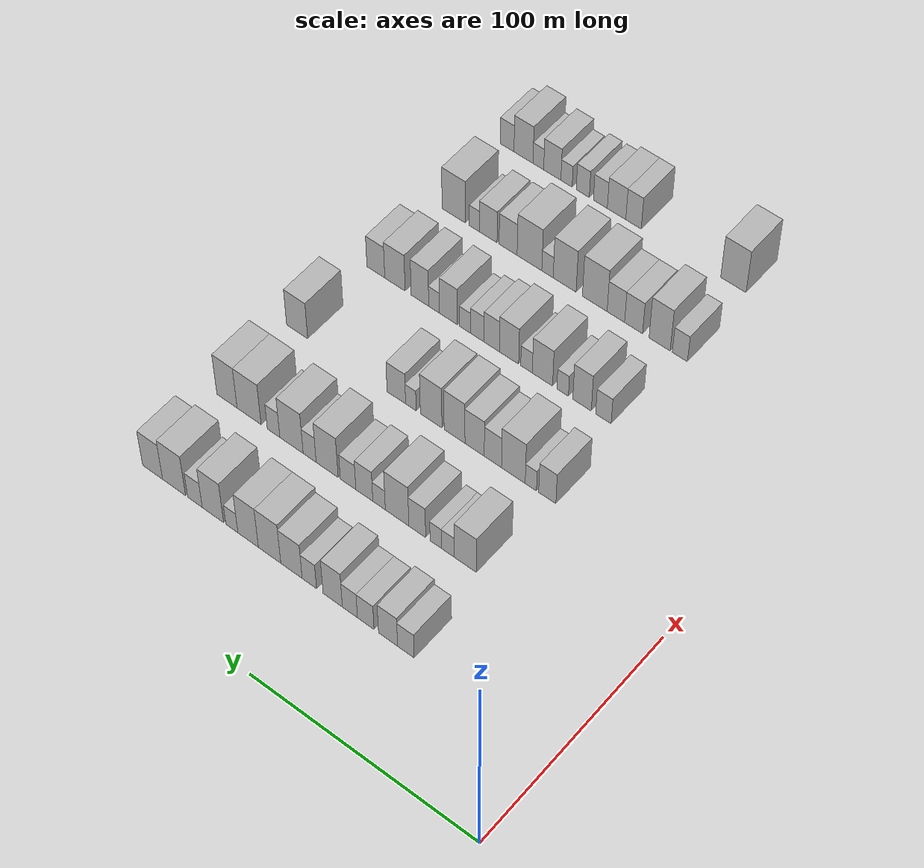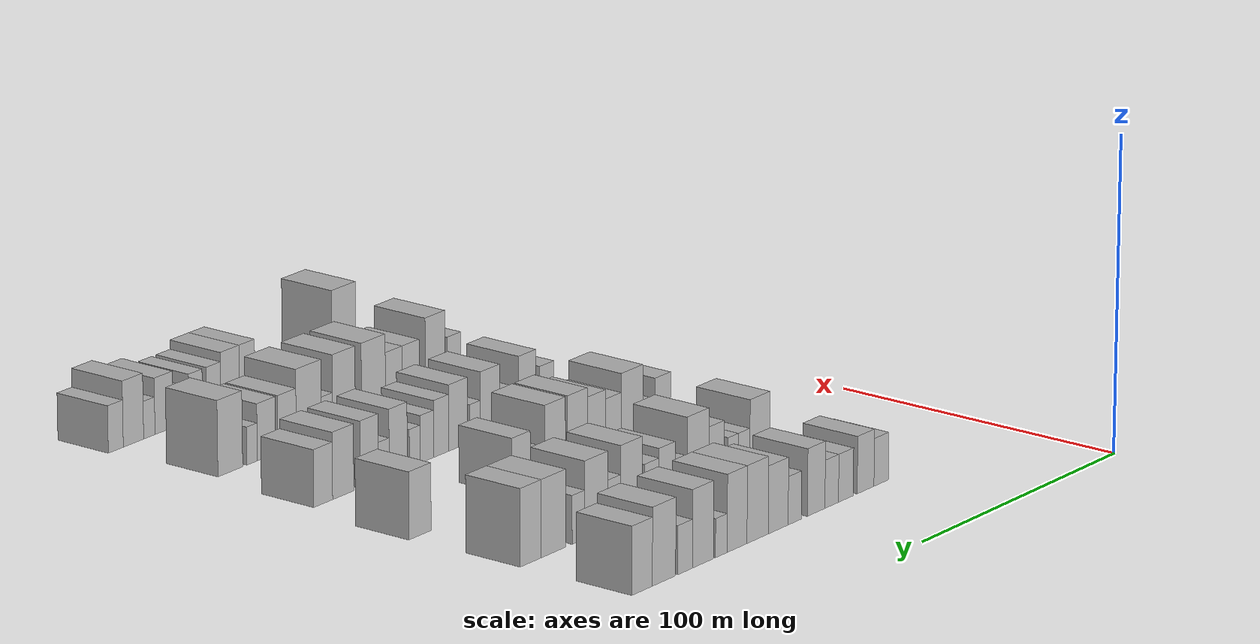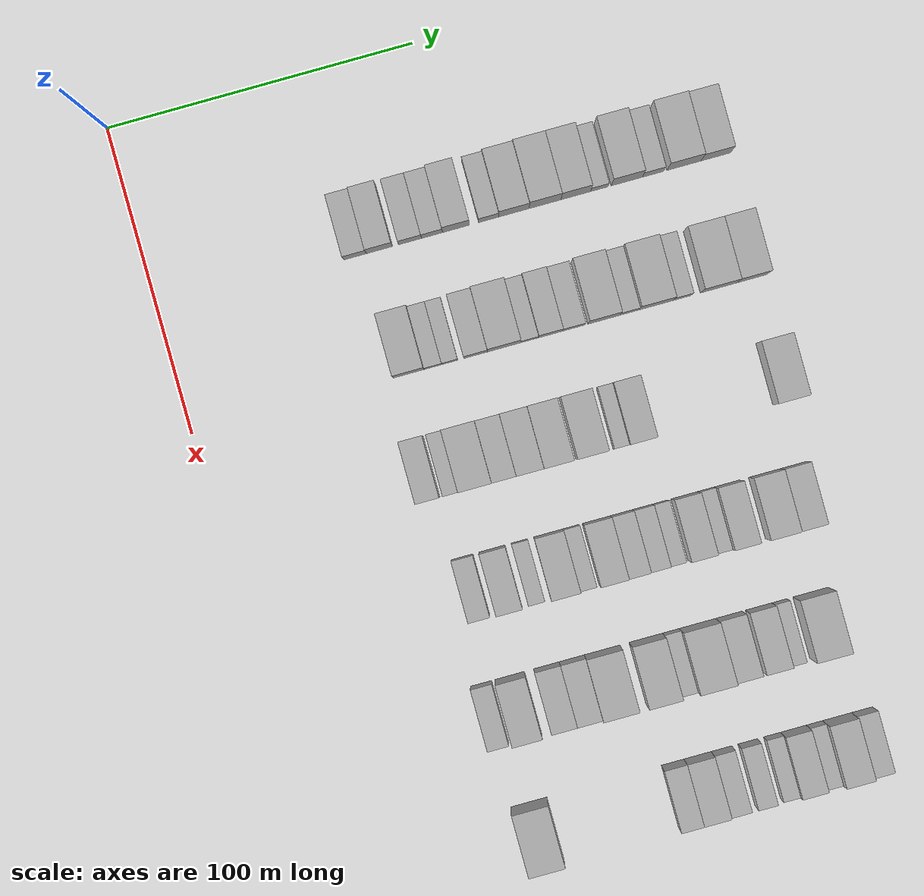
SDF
<sdf version="1.6">
 <world name="default">
  <model name="building_79">
   <static>1</static>
   <pose>50.0000 64.6062 0 0.000000 0.000000 0.000000</pose>
   <link name="link">
    <pose>0 0 7.50 0 0 0</pose>
    <collision name="collision"><geometry><box><size>20.0000 7.3665 15.0000</size></box></geometry></collision>
    <visual name="visual">
     <cast_shadows>0</cast_shadows>
     <geometry><box><size>20.0000 7.3665 15.0000</size></box></geometry>
     <material>
      <script>
       <uri>model://HANNAS_wall/materials/scripts</uri>
       <uri>model://HANNAS_wall/materials/textures</uri>
       <name>vrc/HANNAS_wall</name>
      </script>
     </material>
    </visual>
   </link>
  </model>
  <model name="building_80">
   <static>1</static>
   <pose>50.0000 72.5438 0 0.000000 0.000000 0.000000</pose>
   <link name="link">
    <pose>0 0 9.00 0 0 0</pose>
    <collision name="collision"><geometry><box><size>20.0000 8.5087 18.0000</size></box></geometry></collision>
    <visual name="visual">
     <cast_shadows>0</cast_shadows>
     <geometry><box><size>20.0000 8.5087 18.0000</size></box></geometry>
     <material>
      <script>
       <uri>model://HANNAS_wall/materials/scripts</uri>
       <uri>model://HANNAS_wall/materials/textures</uri>
       <name>vrc/HANNAS_wall</name>
      </script>
     </material>
    </visual>
   </link>
  </model>
  <model name="building_81">
   <static>1</static>
   <pose>50.0000 82.5302 0 0.000000 0.000000 0.000000</pose>
   <link name="link">
    <pose>0 0 7.50 0 0 0</pose>
    <collision name="collision"><geometry><box><size>20.0000 7.4639 15.0000</size></box></geometry></collision>
    <visual name="visual">
     <cast_shadows>0</cast_shadows>
     <geometry><box><size>20.0000 7.4639 15.0000</size></box></geometry>
     <material>
      <script>
       <uri>model://HANNAS_wall/materials/scripts</uri>
       <uri>model://HANNAS_wall/materials/textures</uri>
       <name>vrc/HANNAS_wall</name>
      </script>
     </material>
    </visual>
   </link>
  </model>
  <model name="building_82">
   <static>1</static>
   <pose>50.0000 89.6755 0 0.000000 0.000000 0.000000</pose>
   <link name="link">
    <pose>0 0 7.50 0 0 0</pose>
    <collision name="collision"><geometry><box><size>20.0000 6.8267 15.0000</size></box></geometry></collision>
    <visual name="visual">
     <cast_shadows>0</cast_shadows>
     <geometry><box><size>20.0000 6.8267 15.0000</size></box></geometry>
     <material>
      <script>
       <uri>model://HANNAS_wall/materials/scripts</uri>
       <uri>model://HANNAS_wall/materials/textures</uri>
       <name>vrc/HANNAS_wall</name>
      </script>
     </material>
    </visual>
   </link>
  </model>
  <model name="building_83">
   <static>1</static>
   <pose>50.0000 97.4816 0 0.000000 0.000000 0.000000</pose>
   <link name="link">
    <pose>0 0 10.50 0 0 0</pose>
    <collision name="collision"><geometry><box><size>20.0000 8.7856 21.0000</size></box></geometry></collision>
    <visual name="visual">
     <cast_shadows>0</cast_shadows>
     <geometry><box><size>20.0000 8.7856 21.0000</size></box></geometry>
     <material>
      <script>
       <uri>model://HANNAS_wall/materials/scripts</uri>
       <uri>model://HANNAS_wall/materials/textures</uri>
       <name>vrc/HANNAS_wall</name>
      </script>
     </material>
    </visual>
   </link>
  </model>
  <model name="building_84">
   <static>1</static>
   <pose>50.0000 108.1662 0 0.000000 0.000000 0.000000</pose>
   <link name="link">
    <pose>0 0 7.50 0 0 0</pose>
    <collision name="collision"><geometry><box><size>20.0000 6.5834 15.0000</size></box></geometry></collision>
    <visual name="visual">
     <cast_shadows>0</cast_shadows>
     <geometry><box><size>20.0000 6.5834 15.0000</size></box></geometry>
     <material>
      <script>
       <uri>model://HANNAS_wall/materials/scripts</uri>
       <uri>model://HANNAS_wall/materials/textures</uri>
       <name>vrc/HANNAS_wall</name>
      </script>
     </material>
    </visual>
   </link>
  </model>
  <model name="building_85">
   <static>1</static>
   <pose>50.0000 116.4012 0 0.000000 0.000000 0.000000</pose>
   <link name="link">
    <pose>0 0 10.50 0 0 0</pose>
    <collision name="collision"><geometry><box><size>20.0000 9.8866 21.0000</size></box></geometry></collision>
    <visual name="visual">
     <cast_shadows>0</cast_shadows>
     <geometry><box><size>20.0000 9.8866 21.0000</size></box></geometry>
     <material>
      <script>
       <uri>model://HANNAS_wall/materials/scripts</uri>
       <uri>model://HANNAS_wall/materials/textures</uri>
       <name>vrc/HANNAS_wall</name>
      </script>
     </material>
    </visual>
   </link>
  </model>
  <model name="building_86">
   <static>1</static>
   <pose>50.0000 126.5587 0 0.000000 0.000000 0.000000</pose>
   <link name="link">
    <pose>0 0 12.00 0 0 0</pose>
    <collision name="collision"><geometry><box><size>20.0000 10.4285 24.0000</size></box></geometry></collision>
    <visual name="visual">
     <cast_shadows>0</cast_shadows>
     <geometry><box><size>20.0000 10.4285 24.0000</size></box></geometry>
     <material>
      <script>
       <uri>model://HANNAS_wall/materials/scripts</uri>
       <uri>model://HANNAS_wall/materials/textures</uri>
       <name>vrc/HANNAS_wall</name>
      </script>
     </material>
    </visual>
   </link>
  </model>
  <model name="building_87">
   <static>1</static>
   <pose>50.0000 136.6007 0 0.000000 0.000000 0.000000</pose>
   <link name="link">
    <pose>0 0 12.00 0 0 0</pose>
    <collision name="collision"><geometry><box><size>20.0000 9.6554 24.0000</size></box></geometry></collision>
    <visual name="visual">
     <cast_shadows>0</cast_shadows>
     <geometry><box><size>20.0000 9.6554 24.0000</size></box></geometry>
     <material>
      <script>
       <uri>model://HANNAS_wall/materials/scripts</uri>
       <uri>model://HANNAS_wall/materials/textures</uri>
       <name>vrc/HANNAS_wall</name>
      </script>
     </material>
    </visual>
   </link>
  </model>
  <model name="building_88">
   <static>1</static>
   <pose>50.0000 144.2853 0 0.000000 0.000000 0.000000</pose>
   <link name="link">
    <pose>0 0 6.00 0 0 0</pose>
    <collision name="collision"><geometry><box><size>20.0000 5.7137 12.0000</size></box></geometry></collision>
    <visual name="visual">
     <cast_shadows>0</cast_shadows>
     <geometry><box><size>20.0000 5.7137 12.0000</size></box></geometry>
     <material>
      <script>
       <uri>model://HANNAS_wall/materials/scripts</uri>
       <uri>model://HANNAS_wall/materials/textures</uri>
       <name>vrc/HANNAS_wall</name>
      </script>
     </material>
    </visual>
   </link>
  </model>
  <model name="building_89">
   <static>1</static>
   <pose>50.0000 153.2380 0 0.000000 0.000000 0.000000</pose>
   <link name="link">
    <pose>0 0 12.00 0 0 0</pose>
    <collision name="collision"><geometry><box><size>20.0000 10.1916 24.0000</size></box></geometry></collision>
    <visual name="visual">
     <cast_shadows>0</cast_shadows>
     <geometry><box><size>20.0000 10.1916 24.0000</size></box></geometry>
     <material>
      <script>
       <uri>model://HANNAS_wall/materials/scripts</uri>
       <uri>model://HANNAS_wall/materials/textures</uri>
       <name>vrc/HANNAS_wall</name>
      </script>
     </material>
    </visual>
   </link>
  </model>
  <model name="building_90">
   <static>1</static>
   <pose>50.0000 161.8307 0 0.000000 0.000000 0.000000</pose>
   <link name="link">
    <pose>0 0 7.50 0 0 0</pose>
    <collision name="collision"><geometry><box><size>20.0000 6.9939 15.0000</size></box></geometry></collision>
    <visual name="visual">
     <cast_shadows>0</cast_shadows>
     <geometry><box><size>20.0000 6.9939 15.0000</size></box></geometry>
     <material>
      <script>
       <uri>model://HANNAS_wall/materials/scripts</uri>
       <uri>model://HANNAS_wall/materials/textures</uri>
       <name>vrc/HANNAS_wall</name>
      </script>
     </material>
    </visual>
   </link>
  </model>
  <model name="building_91">
   <static>1</static>
   <pose>50.0000 171.8938 0 0.000000 0.000000 0.000000</pose>
   <link name="link">
    <pose>0 0 12.00 0 0 0</pose>
    <collision name="collision"><geometry><box><size>20.0000 11.1322 24.0000</size></box></geometry></collision>
    <visual name="visual">
     <cast_shadows>0</cast_shadows>
     <geometry><box><size>20.0000 11.1322 24.0000</size></box></geometry>
     <material>
      <script>
       <uri>model://HANNAS_wall/materials/scripts</uri>
       <uri>model://HANNAS_wall/materials/textures</uri>
       <name>vrc/HANNAS_wall</name>
      </script>
     </material>
    </visual>
   </link>
  </model>
  <model name="building_92">
   <static>1</static>
   <pose>50.0000 182.3178 0 0.000000 0.000000 0.000000</pose>
   <link name="link">
    <pose>0 0 10.50 0 0 0</pose>
    <collision name="collision"><geometry><box><size>20.0000 9.7157 21.0000</size></box></geometry></collision>
    <visual name="visual">
     <cast_shadows>0</cast_shadows>
     <geometry><box><size>20.0000 9.7157 21.0000</size></box></geometry>
     <material>
      <script>
       <uri>model://HANNAS_wall/materials/scripts</uri>
       <uri>model://HANNAS_wall/materials/textures</uri>
       <name>vrc/HANNAS_wall</name>
      </script>
     </material>
    </visual>
   </link>
  </model>
  <model name="building_220">
   <static>1</static>
   <pose>90.0000 71.1115 0 0.000000 0.000000 0.000000</pose>
   <link name="link">
    <pose>0 0 10.50 0 0 0</pose>
    <collision name="collision"><geometry><box><size>20.0000 9.9995 21.0000</size></box></geometry></collision>
    <visual name="visual">
     <cast_shadows>0</cast_shadows>
     <geometry><box><size>20.0000 9.9995 21.0000</size></box></geometry>
     <material>
      <script>
       <uri>model://HANNAS_wall/materials/scripts</uri>
       <uri>model://HANNAS_wall/materials/textures</uri>
       <name>vrc/HANNAS_wall</name>
      </script>
     </material>
    </visual>
   </link>
  </model>
  <model name="building_221">
   <static>1</static>
   <pose>90.0000 78.9693 0 0.000000 0.000000 0.000000</pose>
   <link name="link">
    <pose>0 0 6.00 0 0 0</pose>
    <collision name="collision"><geometry><box><size>20.0000 5.7160 12.0000</size></box></geometry></collision>
    <visual name="visual">
     <cast_shadows>0</cast_shadows>
     <geometry><box><size>20.0000 5.7160 12.0000</size></box></geometry>
     <material>
      <script>
       <uri>model://HANNAS_wall/materials/scripts</uri>
       <uri>model://HANNAS_wall/materials/textures</uri>
       <name>vrc/HANNAS_wall</name>
      </script>
     </material>
    </visual>
   </link>
  </model>
  <model name="building_222">
   <static>1</static>
   <pose>90.0000 84.4139 0 0.000000 0.000000 0.000000</pose>
   <link name="link">
    <pose>0 0 6.00 0 0 0</pose>
    <collision name="collision"><geometry><box><size>20.0000 5.1732 12.0000</size></box></geometry></collision>
    <visual name="visual">
     <cast_shadows>0</cast_shadows>
     <geometry><box><size>20.0000 5.1732 12.0000</size></box></geometry>
     <material>
      <script>
       <uri>model://HANNAS_wall/materials/scripts</uri>
       <uri>model://HANNAS_wall/materials/textures</uri>
       <name>vrc/HANNAS_wall</name>
      </script>
     </material>
    </visual>
   </link>
  </model>
  <model name="building_223">
   <static>1</static>
   <pose>90.0000 92.8314 0 0.000000 0.000000 0.000000</pose>
   <link name="link">
    <pose>0 0 9.00 0 0 0</pose>
    <collision name="collision"><geometry><box><size>20.0000 7.6619 18.0000</size></box></geometry></collision>
    <visual name="visual">
     <cast_shadows>0</cast_shadows>
     <geometry><box><size>20.0000 7.6619 18.0000</size></box></geometry>
     <material>
      <script>
       <uri>model://HANNAS_wall/materials/scripts</uri>
       <uri>model://HANNAS_wall/materials/textures</uri>
       <name>vrc/HANNAS_wall</name>
      </script>
     </material>
    </visual>
   </link>
  </model>
  <model name="building_224">
   <static>1</static>
   <pose>90.0000 102.0780 0 0.000000 0.000000 0.000000</pose>
   <link name="link">
    <pose>0 0 12.00 0 0 0</pose>
    <collision name="collision"><geometry><box><size>20.0000 10.8312 24.0000</size></box></geometry></collision>
    <visual name="visual">
     <cast_shadows>0</cast_shadows>
     <geometry><box><size>20.0000 10.8312 24.0000</size></box></geometry>
     <material>
      <script>
       <uri>model://HANNAS_wall/materials/scripts</uri>
       <uri>model://HANNAS_wall/materials/textures</uri>
       <name>vrc/HANNAS_wall</name>
      </script>
     </material>
    </visual>
   </link>
  </model>
  <model name="building_225">
   <static>1</static>
   <pose>90.0000 110.3849 0 0.000000 0.000000 0.000000</pose>
   <link name="link">
    <pose>0 0 6.00 0 0 0</pose>
    <collision name="collision"><geometry><box><size>20.0000 5.7825 12.0000</size></box></geometry></collision>
    <visual name="visual">
     <cast_shadows>0</cast_shadows>
     <geometry><box><size>20.0000 5.7825 12.0000</size></box></geometry>
     <material>
      <script>
       <uri>model://HANNAS_wall/materials/scripts</uri>
       <uri>model://HANNAS_wall/materials/textures</uri>
       <name>vrc/HANNAS_wall</name>
      </script>
     </material>
    </visual>
   </link>
  </model>
  <model name="building_226">
   <static>1</static>
   <pose>90.0000 117.2213 0 0.000000 0.000000 0.000000</pose>
   <link name="link">
    <pose>0 0 9.00 0 0 0</pose>
    <collision name="collision"><geometry><box><size>20.0000 7.8904 18.0000</size></box></geometry></collision>
    <visual name="visual">
     <cast_shadows>0</cast_shadows>
     <geometry><box><size>20.0000 7.8904 18.0000</size></box></geometry>
     <material>
      <script>
       <uri>model://HANNAS_wall/materials/scripts</uri>
       <uri>model://HANNAS_wall/materials/textures</uri>
       <name>vrc/HANNAS_wall</name>
      </script>
     </material>
    </visual>
   </link>
  </model>
  <model name="building_227">
   <static>1</static>
   <pose>90.0000 124.8132 0 0.000000 0.000000 0.000000</pose>
   <link name="link">
    <pose>0 0 7.50 0 0 0</pose>
    <collision name="collision"><geometry><box><size>20.0000 7.2935 15.0000</size></box></geometry></collision>
    <visual name="visual">
     <cast_shadows>0</cast_shadows>
     <geometry><box><size>20.0000 7.2935 15.0000</size></box></geometry>
     <material>
      <script>
       <uri>model://HANNAS_wall/materials/scripts</uri>
       <uri>model://HANNAS_wall/materials/textures</uri>
       <name>vrc/HANNAS_wall</name>
      </script>
     </material>
    </visual>
   </link>
  </model>
  <model name="building_228">
   <static>1</static>
   <pose>90.0000 134.6575 0 0.000000 0.000000 0.000000</pose>
   <link name="link">
    <pose>0 0 12.00 0 0 0</pose>
    <collision name="collision"><geometry><box><size>20.0000 10.3951 24.0000</size></box></geometry></collision>
    <visual name="visual">
     <cast_shadows>0</cast_shadows>
     <geometry><box><size>20.0000 10.3951 24.0000</size></box></geometry>
     <material>
      <script>
       <uri>model://HANNAS_wall/materials/scripts</uri>
       <uri>model://HANNAS_wall/materials/textures</uri>
       <name>vrc/HANNAS_wall</name>
      </script>
     </material>
    </visual>
   </link>
  </model>
  <model name="building_229">
   <static>1</static>
   <pose>90.0000 142.9363 0 0.000000 0.000000 0.000000</pose>
   <link name="link">
    <pose>0 0 7.50 0 0 0</pose>
    <collision name="collision"><geometry><box><size>20.0000 6.1624 15.0000</size></box></geometry></collision>
    <visual name="visual">
     <cast_shadows>0</cast_shadows>
     <geometry><box><size>20.0000 6.1624 15.0000</size></box></geometry>
     <material>
      <script>
       <uri>model://HANNAS_wall/materials/scripts</uri>
       <uri>model://HANNAS_wall/materials/textures</uri>
       <name>vrc/HANNAS_wall</name>
      </script>
     </material>
    </visual>
   </link>
  </model>
  <model name="building_230">
   <static>1</static>
   <pose>90.0000 151.5876 0 0.000000 0.000000 0.000000</pose>
   <link name="link">
    <pose>0 0 12.00 0 0 0</pose>
    <collision name="collision"><geometry><box><size>20.0000 11.1403 24.0000</size></box></geometry></collision>
    <visual name="visual">
     <cast_shadows>0</cast_shadows>
     <geometry><box><size>20.0000 11.1403 24.0000</size></box></geometry>
     <material>
      <script>
       <uri>model://HANNAS_wall/materials/scripts</uri>
       <uri>model://HANNAS_wall/materials/textures</uri>
       <name>vrc/HANNAS_wall</name>
      </script>
     </material>
    </visual>
   </link>
  </model>
  <model name="building_231">
   <static>1</static>
   <pose>90.0000 160.1752 0 0.000000 0.000000 0.000000</pose>
   <link name="link">
    <pose>0 0 7.50 0 0 0</pose>
    <collision name="collision"><geometry><box><size>20.0000 6.0349 15.0000</size></box></geometry></collision>
    <visual name="visual">
     <cast_shadows>0</cast_shadows>
     <geometry><box><size>20.0000 6.0349 15.0000</size></box></geometry>
     <material>
      <script>
       <uri>model://HANNAS_wall/materials/scripts</uri>
       <uri>model://HANNAS_wall/materials/textures</uri>
       <name>vrc/HANNAS_wall</name>
      </script>
     </material>
    </visual>
   </link>
  </model>
  <model name="building_232">
   <static>1</static>
   <pose>90.0000 172.0358 0 0.000000 0.000000 0.000000</pose>
   <link name="link">
    <pose>0 0 12.00 0 0 0</pose>
    <collision name="collision"><geometry><box><size>20.0000 11.6863 24.0000</size></box></geometry></collision>
    <visual name="visual">
     <cast_shadows>0</cast_shadows>
     <geometry><box><size>20.0000 11.6863 24.0000</size></box></geometry>
     <material>
      <script>
       <uri>model://HANNAS_wall/materials/scripts</uri>
       <uri>model://HANNAS_wall/materials/textures</uri>
       <name>vrc/HANNAS_wall</name>
      </script>
     </material>
    </visual>
   </link>
  </model>
  <model name="building_233">
   <static>1</static>
   <pose>90.0000 182.8168 0 0.000000 0.000000 0.000000</pose>
   <link name="link">
    <pose>0 0 12.00 0 0 0</pose>
    <collision name="collision"><geometry><box><size>20.0000 9.8756 24.0000</size></box></geometry></collision>
    <visual name="visual">
     <cast_shadows>0</cast_shadows>
     <geometry><box><size>20.0000 9.8756 24.0000</size></box></geometry>
     <material>
      <script>
       <uri>model://HANNAS_wall/materials/scripts</uri>
       <uri>model://HANNAS_wall/materials/textures</uri>
       <name>vrc/HANNAS_wall</name>
      </script>
     </material>
    </visual>
   </link>
  </model>
  <model name="building_354">
   <static>1</static>
   <pose>130.0000 66.2313 0 0.000000 0.000000 0.000000</pose>
   <link name="link">
    <pose>0 0 9.00 0 0 0</pose>
    <collision name="collision"><geometry><box><size>20.0000 7.7374 18.0000</size></box></geometry></collision>
    <visual name="visual">
     <cast_shadows>0</cast_shadows>
     <geometry><box><size>20.0000 7.7374 18.0000</size></box></geometry>
     <material>
      <script>
       <uri>model://HANNAS_wall/materials/scripts</uri>
       <uri>model://HANNAS_wall/materials/textures</uri>
       <name>vrc/HANNAS_wall</name>
      </script>
     </material>
    </visual>
   </link>
  </model>
  <model name="building_355">
   <static>1</static>
   <pose>130.0000 73.6437 0 0.000000 0.000000 0.000000</pose>
   <link name="link">
    <pose>0 0 6.00 0 0 0</pose>
    <collision name="collision"><geometry><box><size>20.0000 5.0874 12.0000</size></box></geometry></collision>
    <visual name="visual">
     <cast_shadows>0</cast_shadows>
     <geometry><box><size>20.0000 5.0874 12.0000</size></box></geometry>
     <material>
      <script>
       <uri>model://HANNAS_wall/materials/scripts</uri>
       <uri>model://HANNAS_wall/materials/textures</uri>
       <name>vrc/HANNAS_wall</name>
      </script>
     </material>
    </visual>
   </link>
  </model>
  <model name="building_356">
   <static>1</static>
   <pose>130.0000 81.5802 0 0.000000 0.000000 0.000000</pose>
   <link name="link">
    <pose>0 0 12.00 0 0 0</pose>
    <collision name="collision"><geometry><box><size>20.0000 10.7855 24.0000</size></box></geometry></collision>
    <visual name="visual">
     <cast_shadows>0</cast_shadows>
     <geometry><box><size>20.0000 10.7855 24.0000</size></box></geometry>
     <material>
      <script>
       <uri>model://HANNAS_wall/materials/scripts</uri>
       <uri>model://HANNAS_wall/materials/textures</uri>
       <name>vrc/HANNAS_wall</name>
      </script>
     </material>
    </visual>
   </link>
  </model>
  <model name="building_357">
   <static>1</static>
   <pose>130.0000 90.9326 0 0.000000 0.000000 0.000000</pose>
   <link name="link">
    <pose>0 0 9.00 0 0 0</pose>
    <collision name="collision"><geometry><box><size>20.0000 7.9194 18.0000</size></box></geometry></collision>
    <visual name="visual">
     <cast_shadows>0</cast_shadows>
     <geometry><box><size>20.0000 7.9194 18.0000</size></box></geometry>
     <material>
      <script>
       <uri>model://HANNAS_wall/materials/scripts</uri>
       <uri>model://HANNAS_wall/materials/textures</uri>
       <name>vrc/HANNAS_wall</name>
      </script>
     </material>
    </visual>
   </link>
  </model>
  <model name="building_358">
   <static>1</static>
   <pose>130.0000 99.3428 0 0.000000 0.000000 0.000000</pose>
   <link name="link">
    <pose>0 0 10.50 0 0 0</pose>
    <collision name="collision"><geometry><box><size>20.0000 8.9011 21.0000</size></box></geometry></collision>
    <visual name="visual">
     <cast_shadows>0</cast_shadows>
     <geometry><box><size>20.0000 8.9011 21.0000</size></box></geometry>
     <material>
      <script>
       <uri>model://HANNAS_wall/materials/scripts</uri>
       <uri>model://HANNAS_wall/materials/textures</uri>
       <name>vrc/HANNAS_wall</name>
      </script>
     </material>
    </visual>
   </link>
  </model>
  <model name="building_359">
   <static>1</static>
   <pose>130.0000 108.6384 0 0.000000 0.000000 0.000000</pose>
   <link name="link">
    <pose>0 0 12.00 0 0 0</pose>
    <collision name="collision"><geometry><box><size>20.0000 9.6899 24.0000</size></box></geometry></collision>
    <visual name="visual">
     <cast_shadows>0</cast_shadows>
     <geometry><box><size>20.0000 9.6899 24.0000</size></box></geometry>
     <material>
      <script>
       <uri>model://HANNAS_wall/materials/scripts</uri>
       <uri>model://HANNAS_wall/materials/textures</uri>
       <name>vrc/HANNAS_wall</name>
      </script>
     </material>
    </visual>
   </link>
  </model>
  <model name="building_360">
   <static>1</static>
   <pose>130.0000 119.5515 0 0.000000 0.000000 0.000000</pose>
   <link name="link">
    <pose>0 0 12.00 0 0 0</pose>
    <collision name="collision"><geometry><box><size>20.0000 10.1363 24.0000</size></box></geometry></collision>
    <visual name="visual">
     <cast_shadows>0</cast_shadows>
     <geometry><box><size>20.0000 10.1363 24.0000</size></box></geometry>
     <material>
      <script>
       <uri>model://HANNAS_wall/materials/scripts</uri>
       <uri>model://HANNAS_wall/materials/textures</uri>
       <name>vrc/HANNAS_wall</name>
      </script>
     </material>
    </visual>
   </link>
  </model>
  <model name="building_361">
   <static>1</static>
   <pose>130.0000 129.1081 0 0.000000 0.000000 0.000000</pose>
   <link name="link">
    <pose>0 0 6.00 0 0 0</pose>
    <collision name="collision"><geometry><box><size>20.0000 4.9769 12.0000</size></box></geometry></collision>
    <visual name="visual">
     <cast_shadows>0</cast_shadows>
     <geometry><box><size>20.0000 4.9769 12.0000</size></box></geometry>
     <material>
      <script>
       <uri>model://HANNAS_wall/materials/scripts</uri>
       <uri>model://HANNAS_wall/materials/textures</uri>
       <name>vrc/HANNAS_wall</name>
      </script>
     </material>
    </visual>
   </link>
  </model>
  <model name="building_362">
   <static>1</static>
   <pose>130.0000 135.9935 0 0.000000 0.000000 0.000000</pose>
   <link name="link">
    <pose>0 0 9.00 0 0 0</pose>
    <collision name="collision"><geometry><box><size>20.0000 8.7939 18.0000</size></box></geometry></collision>
    <visual name="visual">
     <cast_shadows>0</cast_shadows>
     <geometry><box><size>20.0000 8.7939 18.0000</size></box></geometry>
     <material>
      <script>
       <uri>model://HANNAS_wall/materials/scripts</uri>
       <uri>model://HANNAS_wall/materials/textures</uri>
       <name>vrc/HANNAS_wall</name>
      </script>
     </material>
    </visual>
   </link>
  </model>
  <model name="building_363">
   <static>1</static>
   <pose>130.0000 183.9863 0 0.000000 0.000000 0.000000</pose>
   <link name="link">
    <pose>0 0 10.50 0 0 0</pose>
    <collision name="collision"><geometry><box><size>20.0000 10.3973 21.0000</size></box></geometry></collision>
    <visual name="visual">
     <cast_shadows>0</cast_shadows>
     <geometry><box><size>20.0000 10.3973 21.0000</size></box></geometry>
     <material>
      <script>
       <uri>model://HANNAS_wall/materials/scripts</uri>
       <uri>model://HANNAS_wall/materials/textures</uri>
       <name>vrc/HANNAS_wall</name>
      </script>
     </material>
    </visual>
   </link>
  </model>
  <model name="building_485">
   <static>1</static>
   <pose>170.0000 71.7773 0 0.000000 0.000000 0.000000</pose>
   <link name="link">
    <pose>0 0 7.50 0 0 0</pose>
    <collision name="collision"><geometry><box><size>20.0000 7.0468 15.0000</size></box></geometry></collision>
    <visual name="visual">
     <cast_shadows>0</cast_shadows>
     <geometry><box><size>20.0000 7.0468 15.0000</size></box></geometry>
     <material>
      <script>
       <uri>model://HANNAS_wall/materials/scripts</uri>
       <uri>model://HANNAS_wall/materials/textures</uri>
       <name>vrc/HANNAS_wall</name>
      </script>
     </material>
    </visual>
   </link>
  </model>
  <model name="building_486">
   <static>1</static>
   <pose>170.0000 81.5382 0 0.000000 0.000000 0.000000</pose>
   <link name="link">
    <pose>0 0 10.50 0 0 0</pose>
    <collision name="collision"><geometry><box><size>20.0000 8.4750 21.0000</size></box></geometry></collision>
    <visual name="visual">
     <cast_shadows>0</cast_shadows>
     <geometry><box><size>20.0000 8.4750 21.0000</size></box></geometry>
     <material>
      <script>
       <uri>model://HANNAS_wall/materials/scripts</uri>
       <uri>model://HANNAS_wall/materials/textures</uri>
       <name>vrc/HANNAS_wall</name>
      </script>
     </material>
    </visual>
   </link>
  </model>
  <model name="building_487">
   <static>1</static>
   <pose>170.0000 90.4372 0 0.000000 0.000000 0.000000</pose>
   <link name="link">
    <pose>0 0 6.00 0 0 0</pose>
    <collision name="collision"><geometry><box><size>20.0000 5.3231 12.0000</size></box></geometry></collision>
    <visual name="visual">
     <cast_shadows>0</cast_shadows>
     <geometry><box><size>20.0000 5.3231 12.0000</size></box></geometry>
     <material>
      <script>
       <uri>model://HANNAS_wall/materials/scripts</uri>
       <uri>model://HANNAS_wall/materials/textures</uri>
       <name>vrc/HANNAS_wall</name>
      </script>
     </material>
    </visual>
   </link>
  </model>
  <model name="building_488">
   <static>1</static>
   <pose>170.0000 99.8182 0 0.000000 0.000000 0.000000</pose>
   <link name="link">
    <pose>0 0 10.50 0 0 0</pose>
    <collision name="collision"><geometry><box><size>20.0000 9.4389 21.0000</size></box></geometry></collision>
    <visual name="visual">
     <cast_shadows>0</cast_shadows>
     <geometry><box><size>20.0000 9.4389 21.0000</size></box></geometry>
     <material>
      <script>
       <uri>model://HANNAS_wall/materials/scripts</uri>
       <uri>model://HANNAS_wall/materials/textures</uri>
       <name>vrc/HANNAS_wall</name>
      </script>
     </material>
    </visual>
   </link>
  </model>
  <model name="building_489">
   <static>1</static>
   <pose>170.0000 107.2344 0 0.000000 0.000000 0.000000</pose>
   <link name="link">
    <pose>0 0 6.00 0 0 0</pose>
    <collision name="collision"><geometry><box><size>20.0000 5.3934 12.0000</size></box></geometry></collision>
    <visual name="visual">
     <cast_shadows>0</cast_shadows>
     <geometry><box><size>20.0000 5.3934 12.0000</size></box></geometry>
     <material>
      <script>
       <uri>model://HANNAS_wall/materials/scripts</uri>
       <uri>model://HANNAS_wall/materials/textures</uri>
       <name>vrc/HANNAS_wall</name>
      </script>
     </material>
    </visual>
   </link>
  </model>
  <model name="building_490">
   <static>1</static>
   <pose>170.0000 115.4621 0 0.000000 0.000000 0.000000</pose>
   <link name="link">
    <pose>0 0 10.50 0 0 0</pose>
    <collision name="collision"><geometry><box><size>20.0000 9.0620 21.0000</size></box></geometry></collision>
    <visual name="visual">
     <cast_shadows>0</cast_shadows>
     <geometry><box><size>20.0000 9.0620 21.0000</size></box></geometry>
     <material>
      <script>
       <uri>model://HANNAS_wall/materials/scripts</uri>
       <uri>model://HANNAS_wall/materials/textures</uri>
       <name>vrc/HANNAS_wall</name>
      </script>
     </material>
    </visual>
   </link>
  </model>
  <model name="building_491">
   <static>1</static>
   <pose>170.0000 123.6175 0 0.000000 0.000000 0.000000</pose>
   <link name="link">
    <pose>0 0 9.00 0 0 0</pose>
    <collision name="collision"><geometry><box><size>20.0000 7.2487 18.0000</size></box></geometry></collision>
    <visual name="visual">
     <cast_shadows>0</cast_shadows>
     <geometry><box><size>20.0000 7.2487 18.0000</size></box></geometry>
     <material>
      <script>
       <uri>model://HANNAS_wall/materials/scripts</uri>
       <uri>model://HANNAS_wall/materials/textures</uri>
       <name>vrc/HANNAS_wall</name>
      </script>
     </material>
    </visual>
   </link>
  </model>
  <model name="building_492">
   <static>1</static>
   <pose>170.0000 130.5140 0 0.000000 0.000000 0.000000</pose>
   <link name="link">
    <pose>0 0 7.50 0 0 0</pose>
    <collision name="collision"><geometry><box><size>20.0000 6.5443 15.0000</size></box></geometry></collision>
    <visual name="visual">
     <cast_shadows>0</cast_shadows>
     <geometry><box><size>20.0000 6.5443 15.0000</size></box></geometry>
     <material>
      <script>
       <uri>model://HANNAS_wall/materials/scripts</uri>
       <uri>model://HANNAS_wall/materials/textures</uri>
       <name>vrc/HANNAS_wall</name>
      </script>
     </material>
    </visual>
   </link>
  </model>
  <model name="building_493">
   <static>1</static>
   <pose>170.0000 136.3661 0 0.000000 0.000000 0.000000</pose>
   <link name="link">
    <pose>0 0 6.00 0 0 0</pose>
    <collision name="collision"><geometry><box><size>20.0000 5.1598 12.0000</size></box></geometry></collision>
    <visual name="visual">
     <cast_shadows>0</cast_shadows>
     <geometry><box><size>20.0000 5.1598 12.0000</size></box></geometry>
     <material>
      <script>
       <uri>model://HANNAS_wall/materials/scripts</uri>
       <uri>model://HANNAS_wall/materials/textures</uri>
       <name>vrc/HANNAS_wall</name>
      </script>
     </material>
    </visual>
   </link>
  </model>
  <model name="building_494">
   <static>1</static>
   <pose>170.0000 144.2443 0 0.000000 0.000000 0.000000</pose>
   <link name="link">
    <pose>0 0 10.50 0 0 0</pose>
    <collision name="collision"><geometry><box><size>20.0000 8.5967 21.0000</size></box></geometry></collision>
    <visual name="visual">
     <cast_shadows>0</cast_shadows>
     <geometry><box><size>20.0000 8.5967 21.0000</size></box></geometry>
     <material>
      <script>
       <uri>model://HANNAS_wall/materials/scripts</uri>
       <uri>model://HANNAS_wall/materials/textures</uri>
       <name>vrc/HANNAS_wall</name>
      </script>
     </material>
    </visual>
   </link>
  </model>
  <model name="building_495">
   <static>1</static>
   <pose>170.0000 151.1643 0 0.000000 0.000000 0.000000</pose>
   <link name="link">
    <pose>0 0 6.00 0 0 0</pose>
    <collision name="collision"><geometry><box><size>20.0000 5.2432 12.0000</size></box></geometry></collision>
    <visual name="visual">
     <cast_shadows>0</cast_shadows>
     <geometry><box><size>20.0000 5.2432 12.0000</size></box></geometry>
     <material>
      <script>
       <uri>model://HANNAS_wall/materials/scripts</uri>
       <uri>model://HANNAS_wall/materials/textures</uri>
       <name>vrc/HANNAS_wall</name>
      </script>
     </material>
    </visual>
   </link>
  </model>
  <model name="building_496">
   <static>1</static>
   <pose>170.0000 158.0380 0 0.000000 0.000000 0.000000</pose>
   <link name="link">
    <pose>0 0 10.50 0 0 0</pose>
    <collision name="collision"><geometry><box><size>20.0000 8.5042 21.0000</size></box></geometry></collision>
    <visual name="visual">
     <cast_shadows>0</cast_shadows>
     <geometry><box><size>20.0000 8.5042 21.0000</size></box></geometry>
     <material>
      <script>
       <uri>model://HANNAS_wall/materials/scripts</uri>
       <uri>model://HANNAS_wall/materials/textures</uri>
       <name>vrc/HANNAS_wall</name>
      </script>
     </material>
    </visual>
   </link>
  </model>
  <model name="building_497">
   <static>1</static>
   <pose>170.0000 170.2712 0 0.000000 0.000000 0.000000</pose>
   <link name="link">
    <pose>0 0 10.50 0 0 0</pose>
    <collision name="collision"><geometry><box><size>20.0000 9.9622 21.0000</size></box></geometry></collision>
    <visual name="visual">
     <cast_shadows>0</cast_shadows>
     <geometry><box><size>20.0000 9.9622 21.0000</size></box></geometry>
     <material>
      <script>
       <uri>model://HANNAS_wall/materials/scripts</uri>
       <uri>model://HANNAS_wall/materials/textures</uri>
       <name>vrc/HANNAS_wall</name>
      </script>
     </material>
    </visual>
   </link>
  </model>
  <model name="building_498">
   <static>1</static>
   <pose>170.0000 179.6510 0 0.000000 0.000000 0.000000</pose>
   <link name="link">
    <pose>0 0 9.00 0 0 0</pose>
    <collision name="collision"><geometry><box><size>20.0000 8.7974 18.0000</size></box></geometry></collision>
    <visual name="visual">
     <cast_shadows>0</cast_shadows>
     <geometry><box><size>20.0000 8.7974 18.0000</size></box></geometry>
     <material>
      <script>
       <uri>model://HANNAS_wall/materials/scripts</uri>
       <uri>model://HANNAS_wall/materials/textures</uri>
       <name>vrc/HANNAS_wall</name>
      </script>
     </material>
    </visual>
   </link>
  </model>
  <model name="building_627">
   <static>1</static>
   <pose>210.0000 66.8836 0 0.000000 0.000000 0.000000</pose>
   <link name="link">
    <pose>0 0 7.50 0 0 0</pose>
    <collision name="collision"><geometry><box><size>20.0000 6.9105 15.0000</size></box></geometry></collision>
    <visual name="visual">
     <cast_shadows>0</cast_shadows>
     <geometry><box><size>20.0000 6.9105 15.0000</size></box></geometry>
     <material>
      <script>
       <uri>model://HANNAS_wall/materials/scripts</uri>
       <uri>model://HANNAS_wall/materials/textures</uri>
       <name>vrc/HANNAS_wall</name>
      </script>
     </material>
    </visual>
   </link>
  </model>
  <model name="building_628">
   <static>1</static>
   <pose>210.0000 76.2015 0 0.000000 0.000000 0.000000</pose>
   <link name="link">
    <pose>0 0 12.00 0 0 0</pose>
    <collision name="collision"><geometry><box><size>20.0000 9.7254 24.0000</size></box></geometry></collision>
    <visual name="visual">
     <cast_shadows>0</cast_shadows>
     <geometry><box><size>20.0000 9.7254 24.0000</size></box></geometry>
     <material>
      <script>
       <uri>model://HANNAS_wall/materials/scripts</uri>
       <uri>model://HANNAS_wall/materials/textures</uri>
       <name>vrc/HANNAS_wall</name>
      </script>
     </material>
    </visual>
   </link>
  </model>
  <model name="building_629">
   <static>1</static>
   <pose>210.0000 88.2329 0 0.000000 0.000000 0.000000</pose>
   <link name="link">
    <pose>0 0 9.00 0 0 0</pose>
    <collision name="collision"><geometry><box><size>20.0000 8.3375 18.0000</size></box></geometry></collision>
    <visual name="visual">
     <cast_shadows>0</cast_shadows>
     <geometry><box><size>20.0000 8.3375 18.0000</size></box></geometry>
     <material>
      <script>
       <uri>model://HANNAS_wall/materials/scripts</uri>
       <uri>model://HANNAS_wall/materials/textures</uri>
       <name>vrc/HANNAS_wall</name>
      </script>
     </material>
    </visual>
   </link>
  </model>
  <model name="building_630">
   <static>1</static>
   <pose>210.0000 96.4827 0 0.000000 0.000000 0.000000</pose>
   <link name="link">
    <pose>0 0 9.00 0 0 0</pose>
    <collision name="collision"><geometry><box><size>20.0000 8.1622 18.0000</size></box></geometry></collision>
    <visual name="visual">
     <cast_shadows>0</cast_shadows>
     <geometry><box><size>20.0000 8.1622 18.0000</size></box></geometry>
     <material>
      <script>
       <uri>model://HANNAS_wall/materials/scripts</uri>
       <uri>model://HANNAS_wall/materials/textures</uri>
       <name>vrc/HANNAS_wall</name>
      </script>
     </material>
    </visual>
   </link>
  </model>
  <model name="building_631">
   <static>1</static>
   <pose>210.0000 106.3685 0 0.000000 0.000000 0.000000</pose>
   <link name="link">
    <pose>0 0 12.00 0 0 0</pose>
    <collision name="collision"><geometry><box><size>20.0000 11.6094 24.0000</size></box></geometry></collision>
    <visual name="visual">
     <cast_shadows>0</cast_shadows>
     <geometry><box><size>20.0000 11.6094 24.0000</size></box></geometry>
     <material>
      <script>
       <uri>model://HANNAS_wall/materials/scripts</uri>
       <uri>model://HANNAS_wall/materials/textures</uri>
       <name>vrc/HANNAS_wall</name>
      </script>
     </material>
    </visual>
   </link>
  </model>
  <model name="building_632">
   <static>1</static>
   <pose>210.0000 120.6248 0 0.000000 0.000000 0.000000</pose>
   <link name="link">
    <pose>0 0 12.00 0 0 0</pose>
    <collision name="collision"><geometry><box><size>20.0000 10.9031 24.0000</size></box></geometry></collision>
    <visual name="visual">
     <cast_shadows>0</cast_shadows>
     <geometry><box><size>20.0000 10.9031 24.0000</size></box></geometry>
     <material>
      <script>
       <uri>model://HANNAS_wall/materials/scripts</uri>
       <uri>model://HANNAS_wall/materials/textures</uri>
       <name>vrc/HANNAS_wall</name>
      </script>
     </material>
    </visual>
   </link>
  </model>
  <model name="building_633">
   <static>1</static>
   <pose>210.0000 128.7981 0 0.000000 0.000000 0.000000</pose>
   <link name="link">
    <pose>0 0 6.00 0 0 0</pose>
    <collision name="collision"><geometry><box><size>20.0000 5.4436 12.0000</size></box></geometry></collision>
    <visual name="visual">
     <cast_shadows>0</cast_shadows>
     <geometry><box><size>20.0000 5.4436 12.0000</size></box></geometry>
     <material>
      <script>
       <uri>model://HANNAS_wall/materials/scripts</uri>
       <uri>model://HANNAS_wall/materials/textures</uri>
       <name>vrc/HANNAS_wall</name>
      </script>
     </material>
    </visual>
   </link>
  </model>
  <model name="building_634">
   <static>1</static>
   <pose>210.0000 137.4731 0 0.000000 0.000000 0.000000</pose>
   <link name="link">
    <pose>0 0 12.00 0 0 0</pose>
    <collision name="collision"><geometry><box><size>20.0000 11.9065 24.0000</size></box></geometry></collision>
    <visual name="visual">
     <cast_shadows>0</cast_shadows>
     <geometry><box><size>20.0000 11.9065 24.0000</size></box></geometry>
     <material>
      <script>
       <uri>model://HANNAS_wall/materials/scripts</uri>
       <uri>model://HANNAS_wall/materials/textures</uri>
       <name>vrc/HANNAS_wall</name>
      </script>
     </material>
    </visual>
   </link>
  </model>
  <model name="building_635">
   <static>1</static>
   <pose>210.0000 147.7954 0 0.000000 0.000000 0.000000</pose>
   <link name="link">
    <pose>0 0 9.00 0 0 0</pose>
    <collision name="collision"><geometry><box><size>20.0000 8.7379 18.0000</size></box></geometry></collision>
    <visual name="visual">
     <cast_shadows>0</cast_shadows>
     <geometry><box><size>20.0000 8.7379 18.0000</size></box></geometry>
     <material>
      <script>
       <uri>model://HANNAS_wall/materials/scripts</uri>
       <uri>model://HANNAS_wall/materials/textures</uri>
       <name>vrc/HANNAS_wall</name>
      </script>
     </material>
    </visual>
   </link>
  </model>
  <model name="building_636">
   <static>1</static>
   <pose>210.0000 157.4929 0 0.000000 0.000000 0.000000</pose>
   <link name="link">
    <pose>0 0 9.00 0 0 0</pose>
    <collision name="collision"><geometry><box><size>20.0000 8.6571 18.0000</size></box></geometry></collision>
    <visual name="visual">
     <cast_shadows>0</cast_shadows>
     <geometry><box><size>20.0000 8.6571 18.0000</size></box></geometry>
     <material>
      <script>
       <uri>model://HANNAS_wall/materials/scripts</uri>
       <uri>model://HANNAS_wall/materials/textures</uri>
       <name>vrc/HANNAS_wall</name>
      </script>
     </material>
    </visual>
   </link>
  </model>
  <model name="building_637">
   <static>1</static>
   <pose>210.0000 164.2615 0 0.000000 0.000000 0.000000</pose>
   <link name="link">
    <pose>0 0 6.00 0 0 0</pose>
    <collision name="collision"><geometry><box><size>20.0000 4.8803 12.0000</size></box></geometry></collision>
    <visual name="visual">
     <cast_shadows>0</cast_shadows>
     <geometry><box><size>20.0000 4.8803 12.0000</size></box></geometry>
     <material>
      <script>
       <uri>model://HANNAS_wall/materials/scripts</uri>
       <uri>model://HANNAS_wall/materials/textures</uri>
       <name>vrc/HANNAS_wall</name>
      </script>
     </material>
    </visual>
   </link>
  </model>
  <model name="building_638">
   <static>1</static>
   <pose>210.0000 174.4531 0 0.000000 0.000000 0.000000</pose>
   <link name="link">
    <pose>0 0 12.00 0 0 0</pose>
    <collision name="collision"><geometry><box><size>20.0000 11.5029 24.0000</size></box></geometry></collision>
    <visual name="visual">
     <cast_shadows>0</cast_shadows>
     <geometry><box><size>20.0000 11.5029 24.0000</size></box></geometry>
     <material>
      <script>
       <uri>model://HANNAS_wall/materials/scripts</uri>
       <uri>model://HANNAS_wall/materials/textures</uri>
       <name>vrc/HANNAS_wall</name>
      </script>
     </material>
    </visual>
   </link>
  </model>
  <model name="building_757">
   <static>1</static>
   <pose>250.0000 71.4188 0 0.000000 0.000000 0.000000</pose>
   <link name="link">
    <pose>0 0 12.00 0 0 0</pose>
    <collision name="collision"><geometry><box><size>20.0000 11.7380 24.0000</size></box></geometry></collision>
    <visual name="visual">
     <cast_shadows>0</cast_shadows>
     <geometry><box><size>20.0000 11.7380 24.0000</size></box></geometry>
     <material>
      <script>
       <uri>model://HANNAS_wall/materials/scripts</uri>
       <uri>model://HANNAS_wall/materials/textures</uri>
       <name>vrc/HANNAS_wall</name>
      </script>
     </material>
    </visual>
   </link>
  </model>
  <model name="building_758">
   <static>1</static>
   <pose>250.0000 118.3649 0 0.000000 0.000000 0.000000</pose>
   <link name="link">
    <pose>0 0 9.00 0 0 0</pose>
    <collision name="collision"><geometry><box><size>20.0000 7.3848 18.0000</size></box></geometry></collision>
    <visual name="visual">
     <cast_shadows>0</cast_shadows>
     <geometry><box><size>20.0000 7.3848 18.0000</size></box></geometry>
     <material>
      <script>
       <uri>model://HANNAS_wall/materials/scripts</uri>
       <uri>model://HANNAS_wall/materials/textures</uri>
       <name>vrc/HANNAS_wall</name>
      </script>
     </material>
    </visual>
   </link>
  </model>
  <model name="building_759">
   <static>1</static>
   <pose>250.0000 126.5024 0 0.000000 0.000000 0.000000</pose>
   <link name="link">
    <pose>0 0 9.00 0 0 0</pose>
    <collision name="collision"><geometry><box><size>20.0000 8.8902 18.0000</size></box></geometry></collision>
    <visual name="visual">
     <cast_shadows>0</cast_shadows>
     <geometry><box><size>20.0000 8.8902 18.0000</size></box></geometry>
     <material>
      <script>
       <uri>model://HANNAS_wall/materials/scripts</uri>
       <uri>model://HANNAS_wall/materials/textures</uri>
       <name>vrc/HANNAS_wall</name>
      </script>
     </material>
    </visual>
   </link>
  </model>
  <model name="building_760">
   <static>1</static>
   <pose>250.0000 134.3116 0 0.000000 0.000000 0.000000</pose>
   <link name="link">
    <pose>0 0 7.50 0 0 0</pose>
    <collision name="collision"><geometry><box><size>20.0000 6.7280 15.0000</size></box></geometry></collision>
    <visual name="visual">
     <cast_shadows>0</cast_shadows>
     <geometry><box><size>20.0000 6.7280 15.0000</size></box></geometry>
     <material>
      <script>
       <uri>model://HANNAS_wall/materials/scripts</uri>
       <uri>model://HANNAS_wall/materials/textures</uri>
       <name>vrc/HANNAS_wall</name>
      </script>
     </material>
    </visual>
   </link>
  </model>
  <model name="building_761">
   <static>1</static>
   <pose>250.0000 142.8539 0 0.000000 0.000000 0.000000</pose>
   <link name="link">
    <pose>0 0 7.50 0 0 0</pose>
    <collision name="collision"><geometry><box><size>20.0000 6.3567 15.0000</size></box></geometry></collision>
    <visual name="visual">
     <cast_shadows>0</cast_shadows>
     <geometry><box><size>20.0000 6.3567 15.0000</size></box></geometry>
     <material>
      <script>
       <uri>model://HANNAS_wall/materials/scripts</uri>
       <uri>model://HANNAS_wall/materials/textures</uri>
       <name>vrc/HANNAS_wall</name>
      </script>
     </material>
    </visual>
   </link>
  </model>
  <model name="building_762">
   <static>1</static>
   <pose>250.0000 150.7924 0 0.000000 0.000000 0.000000</pose>
   <link name="link">
    <pose>0 0 6.00 0 0 0</pose>
    <collision name="collision"><geometry><box><size>20.0000 5.5202 12.0000</size></box></geometry></collision>
    <visual name="visual">
     <cast_shadows>0</cast_shadows>
     <geometry><box><size>20.0000 5.5202 12.0000</size></box></geometry>
     <material>
      <script>
       <uri>model://HANNAS_wall/materials/scripts</uri>
       <uri>model://HANNAS_wall/materials/textures</uri>
       <name>vrc/HANNAS_wall</name>
      </script>
     </material>
    </visual>
   </link>
  </model>
  <model name="building_763">
   <static>1</static>
   <pose>250.0000 157.7870 0 0.000000 0.000000 0.000000</pose>
   <link name="link">
    <pose>0 0 9.00 0 0 0</pose>
    <collision name="collision"><geometry><box><size>20.0000 8.4690 18.0000</size></box></geometry></collision>
    <visual name="visual">
     <cast_shadows>0</cast_shadows>
     <geometry><box><size>20.0000 8.4690 18.0000</size></box></geometry>
     <material>
      <script>
       <uri>model://HANNAS_wall/materials/scripts</uri>
       <uri>model://HANNAS_wall/materials/textures</uri>
       <name>vrc/HANNAS_wall</name>
      </script>
     </material>
    </visual>
   </link>
  </model>
  <model name="building_764">
   <static>1</static>
   <pose>250.0000 164.6710 0 0.000000 0.000000 0.000000</pose>
   <link name="link">
    <pose>0 0 6.00 0 0 0</pose>
    <collision name="collision"><geometry><box><size>20.0000 5.2990 12.0000</size></box></geometry></collision>
    <visual name="visual">
     <cast_shadows>0</cast_shadows>
     <geometry><box><size>20.0000 5.2990 12.0000</size></box></geometry>
     <material>
      <script>
       <uri>model://HANNAS_wall/materials/scripts</uri>
       <uri>model://HANNAS_wall/materials/textures</uri>
       <name>vrc/HANNAS_wall</name>
      </script>
     </material>
    </visual>
   </link>
  </model>
  <model name="building_765">
   <static>1</static>
   <pose>250.0000 172.0401 0 0.000000 0.000000 0.000000</pose>
   <link name="link">
    <pose>0 0 10.50 0 0 0</pose>
    <collision name="collision"><geometry><box><size>20.0000 9.4392 21.0000</size></box></geometry></collision>
    <visual name="visual">
     <cast_shadows>0</cast_shadows>
     <geometry><box><size>20.0000 9.4392 21.0000</size></box></geometry>
     <material>
      <script>
       <uri>model://HANNAS_wall/materials/scripts</uri>
       <uri>model://HANNAS_wall/materials/textures</uri>
       <name>vrc/HANNAS_wall</name>
      </script>
     </material>
    </visual>
   </link>
  </model>
  <model name="building_766">
   <static>1</static>
   <pose>250.0000 180.2108 0 0.000000 0.000000 0.000000</pose>
   <link name="link">
    <pose>0 0 7.50 0 0 0</pose>
    <collision name="collision"><geometry><box><size>20.0000 6.9022 15.0000</size></box></geometry></collision>
    <visual name="visual">
     <cast_shadows>0</cast_shadows>
     <geometry><box><size>20.0000 6.9022 15.0000</size></box></geometry>
     <material>
      <script>
       <uri>model://HANNAS_wall/materials/scripts</uri>
       <uri>model://HANNAS_wall/materials/textures</uri>
       <name>vrc/HANNAS_wall</name>
      </script>
     </material>
    </visual>
   </link>
  </model>
 </world>
</sdf>
